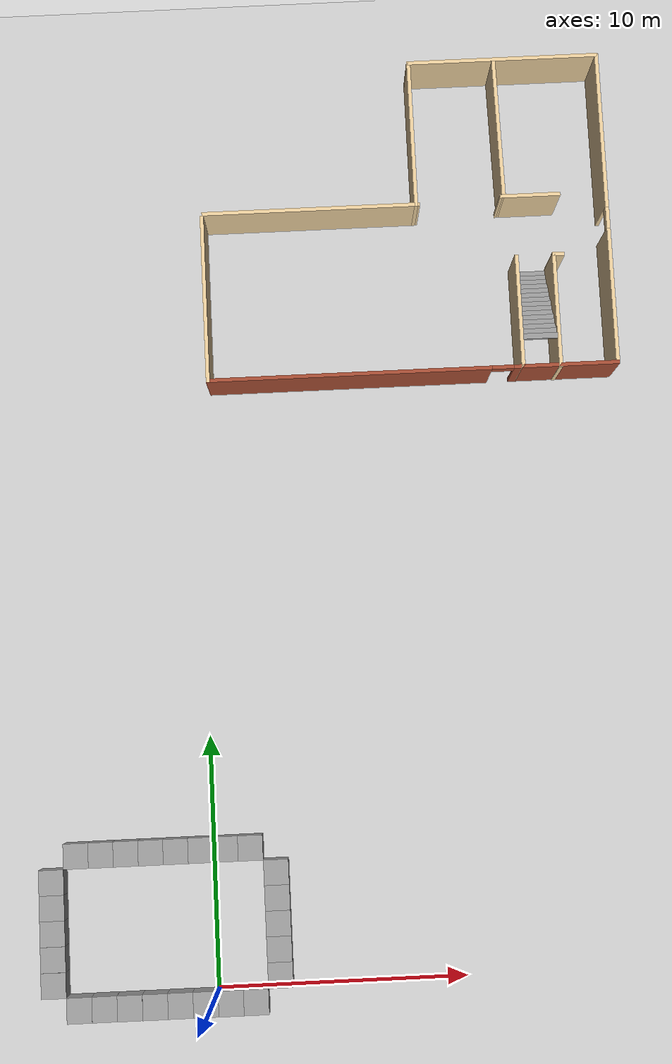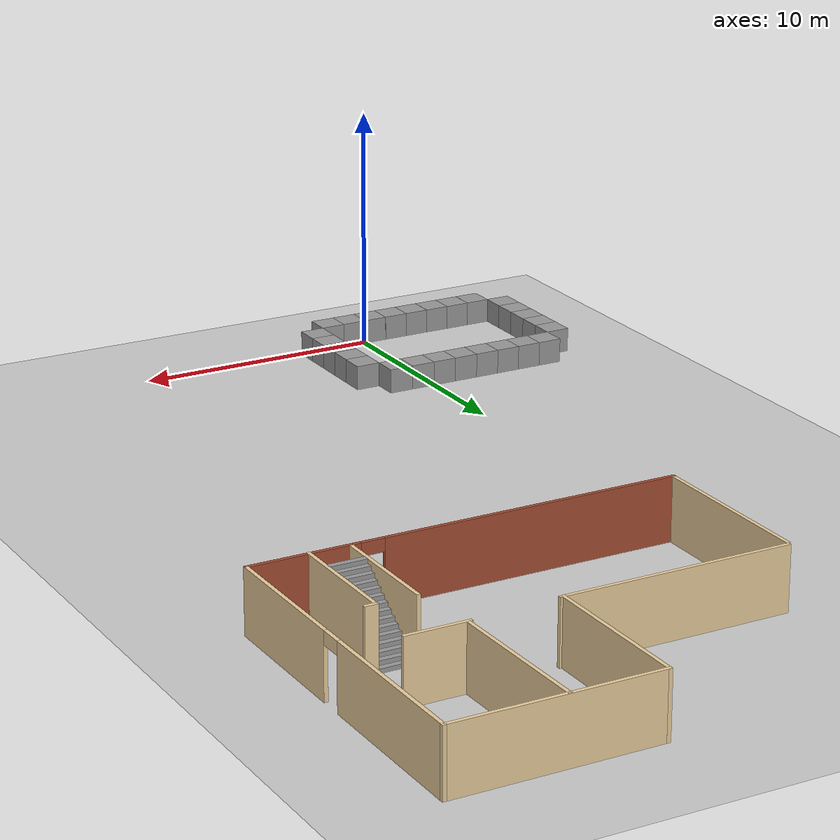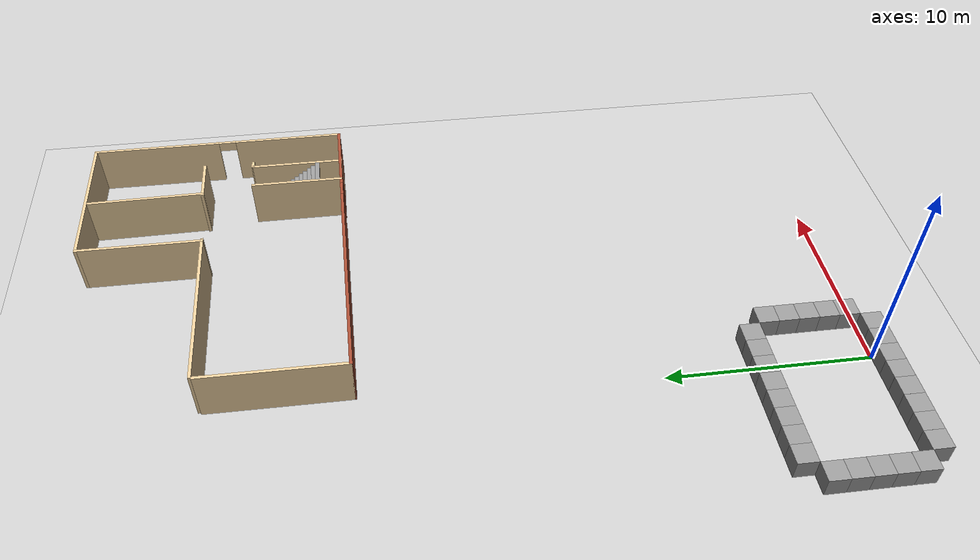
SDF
<sdf version="1.6">
 <world name="default">
  <light name="sun" type="directional">
   <pose>0 0 10 0 -0 0</pose>
   <diffuse>0.8 0.8 0.8 1</diffuse>
   <specular>0.2 0.2 0.2 1</specular>
   <attenuation>
    <range>1000</range>
    <constant>0.9</constant>
    <linear>0.01</linear>
    <quadratic>0.001</quadratic>
   </attenuation>
   <direction>-0.5 0.1 -0.9</direction>
  </light>
  <model name="ground_plane">
   <static>1</static>
   <link name="link">
    <collision name="collision">
     <geometry><plane><normal>0 0 1</normal><size>100 100</size></plane></geometry>
     <surface>
      <contact><collide_bitmask>65535</collide_bitmask></contact>
      <friction><ode><mu>100</mu><mu2>50</mu2></ode></friction>
     </surface>
    </collision>
    <visual name="visual">
     <cast_shadows>0</cast_shadows>
     <geometry><plane><normal>0 0 1</normal><size>100 100</size></plane></geometry>
     <material>
      <script><uri>file://media/materials/scripts/gazebo.material</uri><name>Gazebo/Grey</name></script>
     </material>
    </visual>
   </link>
  </model>
  <gravity>0 0 -9.8</gravity>
  <magnetic_field>6e-06 2.3e-05 -4.2e-05</magnetic_field>
  <atmosphere type="adiabatic"/>
  <physics name="default_physics" default="0" type="ode">
   <max_step_size>0.001</max_step_size>
   <real_time_factor>1</real_time_factor>
   <real_time_update_rate>1000</real_time_update_rate>
  </physics>
  <scene><ambient>0.4 0.4 0.4 1</ambient><background>0.7 0.7 0.7 1</background><shadows>1</shadows></scene>
  <spherical_coordinates>
   <surface_model>EARTH_WGS84</surface_model>
   <latitude_deg>0</latitude_deg>
   <longitude_deg>0</longitude_deg>
   <elevation>0</elevation>
   <heading_deg>0</heading_deg>
  </spherical_coordinates>
  <model name="lounge">
   <pose>8.96929 30.8479 0 0 -0 0</pose>
   <link name="Stairs_0">
    <visual name="Stairs_0_Visual_0">
     <pose>5.26794 -2.03684 0.083333 0 -0 0</pose>
     <geometry><box><size>1.41269 0.233333 0.166667</size></box></geometry>
     <material>
      <script><uri>file://media/materials/scripts/gazebo.material</uri><name>Gazebo/Grey</name></script>
      <ambient>1 1 1 1</ambient>
     </material>
     <meta><layer>0</layer></meta>
    </visual>
    <collision name="Stairs_0_Collision_0">
     <geometry><box><size>1.41269 0.233333 0.166667</size></box></geometry>
     <pose>5.26794 -2.03684 0.083333 0 -0 0</pose>
    </collision>
    <visual name="Stairs_0_Visual_1">
     <pose>5.26794 -2.27017 0.25 0 -0 0</pose>
     <geometry><box><size>1.41269 0.233333 0.166667</size></box></geometry>
     <material>
      <script><uri>file://media/materials/scripts/gazebo.material</uri><name>Gazebo/Grey</name></script>
      <ambient>1 1 1 1</ambient>
     </material>
     <meta><layer>0</layer></meta>
    </visual>
    <collision name="Stairs_0_Collision_1">
     <geometry><box><size>1.41269 0.233333 0.166667</size></box></geometry>
     <pose>5.26794 -2.27017 0.25 0 -0 0</pose>
    </collision>
    <visual name="Stairs_0_Visual_2">
     <pose>5.26794 -2.50351 0.416667 0 -0 0</pose>
     <geometry><box><size>1.41269 0.233333 0.166667</size></box></geometry>
     <material>
      <script><uri>file://media/materials/scripts/gazebo.material</uri><name>Gazebo/Grey</name></script>
      <ambient>1 1 1 1</ambient>
     </material>
     <meta><layer>0</layer></meta>
    </visual>
    <collision name="Stairs_0_Collision_2">
     <geometry><box><size>1.41269 0.233333 0.166667</size></box></geometry>
     <pose>5.26794 -2.50351 0.416667 0 -0 0</pose>
    </collision>
    <visual name="Stairs_0_Visual_3">
     <pose>5.26794 -2.73684 0.583333 0 -0 0</pose>
     <geometry><box><size>1.41269 0.233333 0.166667</size></box></geometry>
     <material>
      <script><uri>file://media/materials/scripts/gazebo.material</uri><name>Gazebo/Grey</name></script>
      <ambient>1 1 1 1</ambient>
     </material>
     <meta><layer>0</layer></meta>
    </visual>
    <collision name="Stairs_0_Collision_3">
     <geometry><box><size>1.41269 0.233333 0.166667</size></box></geometry>
     <pose>5.26794 -2.73684 0.583333 0 -0 0</pose>
    </collision>
    <visual name="Stairs_0_Visual_4">
     <pose>5.26794 -2.97017 0.75 0 -0 0</pose>
     <geometry><box><size>1.41269 0.233333 0.166667</size></box></geometry>
     <material>
      <script><uri>file://media/materials/scripts/gazebo.material</uri><name>Gazebo/Grey</name></script>
      <ambient>1 1 1 1</ambient>
     </material>
     <meta><layer>0</layer></meta>
    </visual>
    <collision name="Stairs_0_Collision_4">
     <geometry><box><size>1.41269 0.233333 0.166667</size></box></geometry>
     <pose>5.26794 -2.97017 0.75 0 -0 0</pose>
    </collision>
    <visual name="Stairs_0_Visual_5">
     <pose>5.26794 -3.2035 0.916667 0 -0 0</pose>
     <geometry><box><size>1.41269 0.233333 0.166667</size></box></geometry>
     <material>
      <script><uri>file://media/materials/scripts/gazebo.material</uri><name>Gazebo/Grey</name></script>
      <ambient>1 1 1 1</ambient>
     </material>
     <meta><layer>0</layer></meta>
    </visual>
    <collision name="Stairs_0_Collision_5">
     <geometry><box><size>1.41269 0.233333 0.166667</size></box></geometry>
     <pose>5.26794 -3.2035 0.916667 0 -0 0</pose>
    </collision>
    <visual name="Stairs_0_Visual_6">
     <pose>5.26794 -3.43684 1.08333 0 -0 0</pose>
     <geometry><box><size>1.41269 0.233333 0.166667</size></box></geometry>
     <material>
      <script><uri>file://media/materials/scripts/gazebo.material</uri><name>Gazebo/Grey</name></script>
      <ambient>1 1 1 1</ambient>
     </material>
     <meta><layer>0</layer></meta>
    </visual>
    <collision name="Stairs_0_Collision_6">
     <geometry><box><size>1.41269 0.233333 0.166667</size></box></geometry>
     <pose>5.26794 -3.43684 1.08333 0 -0 0</pose>
    </collision>
    <visual name="Stairs_0_Visual_7">
     <pose>5.26794 -3.67017 1.25 0 -0 0</pose>
     <geometry><box><size>1.41269 0.233333 0.166667</size></box></geometry>
     <material>
      <script><uri>file://media/materials/scripts/gazebo.material</uri><name>Gazebo/Grey</name></script>
      <ambient>1 1 1 1</ambient>
     </material>
     <meta><layer>0</layer></meta>
    </visual>
    <collision name="Stairs_0_Collision_7">
     <geometry><box><size>1.41269 0.233333 0.166667</size></box></geometry>
     <pose>5.26794 -3.67017 1.25 0 -0 0</pose>
    </collision>
    <visual name="Stairs_0_Visual_8">
     <pose>5.26794 -3.90351 1.41667 0 -0 0</pose>
     <geometry><box><size>1.41269 0.233333 0.166667</size></box></geometry>
     <material>
      <script><uri>file://media/materials/scripts/gazebo.material</uri><name>Gazebo/Grey</name></script>
      <ambient>1 1 1 1</ambient>
     </material>
     <meta><layer>0</layer></meta>
    </visual>
    <collision name="Stairs_0_Collision_8">
     <geometry><box><size>1.41269 0.233333 0.166667</size></box></geometry>
     <pose>5.26794 -3.90351 1.41667 0 -0 0</pose>
    </collision>
    <visual name="Stairs_0_Visual_9">
     <pose>5.26794 -4.13684 1.58333 0 -0 0</pose>
     <geometry><box><size>1.41269 0.233333 0.166667</size></box></geometry>
     <material>
      <script><uri>file://media/materials/scripts/gazebo.material</uri><name>Gazebo/Grey</name></script>
      <ambient>1 1 1 1</ambient>
     </material>
     <meta><layer>0</layer></meta>
    </visual>
    <collision name="Stairs_0_Collision_9">
     <geometry><box><size>1.41269 0.233333 0.166667</size></box></geometry>
     <pose>5.26794 -4.13684 1.58333 0 -0 0</pose>
    </collision>
    <visual name="Stairs_0_Visual_10">
     <pose>5.26794 -4.37017 1.75 0 -0 0</pose>
     <geometry><box><size>1.41269 0.233333 0.166667</size></box></geometry>
     <material>
      <script><uri>file://media/materials/scripts/gazebo.material</uri><name>Gazebo/Grey</name></script>
      <ambient>1 1 1 1</ambient>
     </material>
     <meta><layer>0</layer></meta>
    </visual>
    <collision name="Stairs_0_Collision_10">
     <geometry><box><size>1.41269 0.233333 0.166667</size></box></geometry>
     <pose>5.26794 -4.37017 1.75 0 -0 0</pose>
    </collision>
    <visual name="Stairs_0_Visual_11">
     <pose>5.26794 -4.60351 1.91667 0 -0 0</pose>
     <geometry><box><size>1.41269 0.233333 0.166667</size></box></geometry>
     <material>
      <script><uri>file://media/materials/scripts/gazebo.material</uri><name>Gazebo/Grey</name></script>
      <ambient>1 1 1 1</ambient>
     </material>
     <meta><layer>0</layer></meta>
    </visual>
    <collision name="Stairs_0_Collision_11">
     <geometry><box><size>1.41269 0.233333 0.166667</size></box></geometry>
     <pose>5.26794 -4.60351 1.91667 0 -0 0</pose>
    </collision>
    <visual name="Stairs_0_Visual_12">
     <pose>5.26794 -4.83684 2.08333 0 -0 0</pose>
     <geometry><box><size>1.41269 0.233333 0.166667</size></box></geometry>
     <material>
      <script><uri>file://media/materials/scripts/gazebo.material</uri><name>Gazebo/Grey</name></script>
      <ambient>1 1 1 1</ambient>
     </material>
     <meta><layer>0</layer></meta>
    </visual>
    <collision name="Stairs_0_Collision_12">
     <geometry><box><size>1.41269 0.233333 0.166667</size></box></geometry>
     <pose>5.26794 -4.83684 2.08333 0 -0 0</pose>
    </collision>
    <visual name="Stairs_0_Visual_13">
     <pose>5.26794 -5.07017 2.25 0 -0 0</pose>
     <geometry><box><size>1.41269 0.233333 0.166667</size></box></geometry>
     <material>
      <script><uri>file://media/materials/scripts/gazebo.material</uri><name>Gazebo/Grey</name></script>
      <ambient>1 1 1 1</ambient>
     </material>
     <meta><layer>0</layer></meta>
    </visual>
    <collision name="Stairs_0_Collision_13">
     <geometry><box><size>1.41269 0.233333 0.166667</size></box></geometry>
     <pose>5.26794 -5.07017 2.25 0 -0 0</pose>
    </collision>
    <visual name="Stairs_0_Visual_14">
     <pose>5.26794 -5.30351 2.41667 0 -0 0</pose>
     <geometry><box><size>1.41269 0.233333 0.166667</size></box></geometry>
     <material>
      <script><uri>file://media/materials/scripts/gazebo.material</uri><name>Gazebo/Grey</name></script>
      <ambient>1 1 1 1</ambient>
     </material>
     <meta><layer>0</layer></meta>
    </visual>
    <collision name="Stairs_0_Collision_14">
     <geometry><box><size>1.41269 0.233333 0.166667</size></box></geometry>
     <pose>5.26794 -5.30351 2.41667 0 -0 0</pose>
    </collision>
   </link>
   <link name="Wall_25">
    <collision name="Wall_25_Collision">
     <geometry><box><size>7 0.15 2.5</size></box></geometry>
     <pose>0 0 1.25 0 -0 0</pose>
    </collision>
    <visual name="Wall_25_Visual">
     <pose>0 0 1.25 0 -0 0</pose>
     <geometry><box><size>7 0.15 2.5</size></box></geometry>
     <material>
      <script><uri>file://media/materials/scripts/gazebo.material</uri><name>Gazebo/Grey</name></script>
      <ambient>0.921569 0.807843 0.615686 1</ambient>
     </material>
     <meta><layer>0</layer></meta>
    </visual>
    <pose>-8.35 -3.11051 0 0 0 -1.5708</pose>
   </link>
   <link name="Wall_27">
    <pose>-1.925 -6.53552 0 0 -0 0</pose>
    <visual name="Wall_27_Visual_0">
     <pose>-0.677313 0 1.25 0 -0 0</pose>
     <geometry><box><size>11.6454 0.15 2.5</size></box></geometry>
     <material>
      <script><uri>file://media/materials/scripts/gazebo.material</uri><name>Gazebo/Bricks</name></script>
      <ambient>1 1 1 1</ambient>
     </material>
     <meta><layer>0</layer></meta>
    </visual>
    <collision name="Wall_27_Collision_0">
     <geometry><box><size>11.6454 0.15 2.5</size></box></geometry>
     <pose>-0.677313 0 1.25 0 -0 0</pose>
    </collision>
    <visual name="Wall_27_Visual_1">
     <pose>6.27269 0 1.25 0 -0 0</pose>
     <geometry><box><size>0.454627 0.15 2.5</size></box></geometry>
     <material>
      <script><uri>file://media/materials/scripts/gazebo.material</uri><name>Gazebo/Bricks</name></script>
      <ambient>1 1 1 1</ambient>
     </material>
     <meta><layer>0</layer></meta>
    </visual>
    <collision name="Wall_27_Collision_1">
     <geometry><box><size>0.454627 0.15 2.5</size></box></geometry>
     <pose>6.27269 0 1.25 0 -0 0</pose>
    </collision>
    <visual name="Wall_27_Visual_2">
     <pose>5.59537 0 2.25 0 -0 0</pose>
     <geometry><box><size>0.9 0.15 0.5</size></box></geometry>
     <material>
      <script><uri>file://media/materials/scripts/gazebo.material</uri><name>Gazebo/Bricks</name></script>
      <ambient>1 1 1 1</ambient>
     </material>
     <meta><layer>0</layer></meta>
    </visual>
    <collision name="Wall_27_Collision_2">
     <geometry><box><size>0.9 0.15 0.5</size></box></geometry>
     <pose>5.59537 0 2.25 0 -0 0</pose>
    </collision>
   </link>
   <link name="Wall_28">
    <collision name="Wall_28_Collision">
     <geometry><box><size>4.75 0.15 2.5</size></box></geometry>
     <pose>0 0 1.25 0 -0 0</pose>
    </collision>
    <visual name="Wall_28_Visual">
     <pose>0 0 1.25 0 -0 0</pose>
     <geometry><box><size>4.75 0.15 2.5</size></box></geometry>
     <material>
      <script><uri>file://media/materials/scripts/gazebo.material</uri><name>Gazebo/Grey</name></script>
      <ambient>0.921569 0.807843 0.615686 1</ambient>
     </material>
     <meta><layer>0</layer></meta>
    </visual>
    <pose>4.5 -4.23552 0 0 -0 1.5708</pose>
   </link>
   <link name="Wall_30">
    <collision name="Wall_30_Collision">
     <geometry><box><size>4 0.15 2.5</size></box></geometry>
     <pose>0 0 1.25 0 -0 0</pose>
    </collision>
    <visual name="Wall_30_Visual">
     <pose>0 0 1.25 0 -0 0</pose>
     <geometry><box><size>4 0.15 2.5</size></box></geometry>
     <material>
      <script><uri>file://media/materials/scripts/gazebo.material</uri><name>Gazebo/Bricks</name></script>
      <ambient>1 1 1 1</ambient>
     </material>
     <meta><layer>0</layer></meta>
    </visual>
    <pose>6.425 -6.53552 0 0 -0 0</pose>
   </link>
   <link name="Wall_31">
    <pose>8.35 0.014485 0 0 -0 1.5708</pose>
    <visual name="Wall_31_Visual_0">
     <pose>-3.77058 0 1.25 0 -0 0</pose>
     <geometry><box><size>5.70883 0.15 2.5</size></box></geometry>
     <material>
      <script><uri>file://media/materials/scripts/gazebo.material</uri><name>Gazebo/Grey</name></script>
      <ambient>0.921569 0.807843 0.615686 1</ambient>
     </material>
     <meta><layer>0</layer></meta>
    </visual>
    <collision name="Wall_31_Collision_0">
     <geometry><box><size>5.70883 0.15 2.5</size></box></geometry>
     <pose>-3.77058 0 1.25 0 -0 0</pose>
    </collision>
    <visual name="Wall_31_Visual_1">
     <pose>3.30442 0 1.25 0 -0 0</pose>
     <geometry><box><size>6.64117 0.15 2.5</size></box></geometry>
     <material>
      <script><uri>file://media/materials/scripts/gazebo.material</uri><name>Gazebo/Grey</name></script>
      <ambient>0.921569 0.807843 0.615686 1</ambient>
     </material>
     <meta><layer>0</layer></meta>
    </visual>
    <collision name="Wall_31_Collision_1">
     <geometry><box><size>6.64117 0.15 2.5</size></box></geometry>
     <pose>3.30442 0 1.25 0 -0 0</pose>
    </collision>
    <visual name="Wall_31_Visual_2">
     <pose>-0.466169 0 2.25 0 -0 0</pose>
     <geometry><box><size>0.9 0.15 0.5</size></box></geometry>
     <material>
      <script><uri>file://media/materials/scripts/gazebo.material</uri><name>Gazebo/Grey</name></script>
      <ambient>0.921569 0.807843 0.615686 1</ambient>
     </material>
     <meta><layer>0</layer></meta>
    </visual>
    <collision name="Wall_31_Collision_2">
     <geometry><box><size>0.9 0.15 0.5</size></box></geometry>
     <pose>-0.466169 0 2.25 0 -0 0</pose>
    </collision>
   </link>
   <link name="Wall_32">
    <collision name="Wall_32_Collision">
     <geometry><box><size>8 0.15 2.5</size></box></geometry>
     <pose>0 0 1.25 0 -0 0</pose>
    </collision>
    <visual name="Wall_32_Visual">
     <pose>0 0 1.25 0 -0 0</pose>
     <geometry><box><size>8 0.15 2.5</size></box></geometry>
     <material>
      <script><uri>file://media/materials/scripts/gazebo.material</uri><name>Gazebo/Grey</name></script>
      <ambient>0.921569 0.807843 0.615686 1</ambient>
     </material>
     <meta><layer>0</layer></meta>
    </visual>
    <pose>4.425 6.56449 0 0 -0 3.14159</pose>
   </link>
   <link name="Wall_33">
    <collision name="Wall_33_Collision">
     <geometry><box><size>6.25052 0.15 2.5</size></box></geometry>
     <pose>0 0 1.25 0 -0 0</pose>
    </collision>
    <visual name="Wall_33_Visual">
     <pose>0 0 1.25 0 -0 0</pose>
     <geometry><box><size>6.25052 0.15 2.5</size></box></geometry>
     <material>
      <script><uri>file://media/materials/scripts/gazebo.material</uri><name>Gazebo/Grey</name></script>
      <ambient>0.921569 0.807843 0.615686 1</ambient>
     </material>
     <meta><layer>0</layer></meta>
    </visual>
    <pose>0.5 3.51449 0 0 0 -1.5708</pose>
   </link>
   <link name="Wall_34">
    <collision name="Wall_34_Collision">
     <geometry><box><size>9 0.15 2.5</size></box></geometry>
     <pose>0 0 1.25 0 -0 0</pose>
    </collision>
    <visual name="Wall_34_Visual">
     <pose>0 0 1.25 0 -0 0</pose>
     <geometry><box><size>9 0.15 2.5</size></box></geometry>
     <material>
      <script><uri>file://media/materials/scripts/gazebo.material</uri><name>Gazebo/Grey</name></script>
      <ambient>0.921569 0.807843 0.615686 1</ambient>
     </material>
     <meta><layer>0</layer></meta>
    </visual>
    <pose>-3.845 0.464485 0 0 -0 3.14159</pose>
   </link>
   <link name="Wall_36">
    <collision name="Wall_36_Collision">
     <geometry><box><size>6.02472 0.15 2.5</size></box></geometry>
     <pose>0 0 1.25 0 -0 0</pose>
    </collision>
    <visual name="Wall_36_Visual">
     <pose>0 0 1.25 0 -0 0</pose>
     <geometry><box><size>6.02472 0.15 2.5</size></box></geometry>
     <material>
      <script><uri>file://media/materials/scripts/gazebo.material</uri><name>Gazebo/Grey</name></script>
      <ambient>0.921569 0.807843 0.615686 1</ambient>
     </material>
     <meta><layer>0</layer></meta>
    </visual>
    <pose>4.08753 3.58036 0 0 0 -1.55513</pose>
   </link>
   <link name="Wall_37">
    <collision name="Wall_37_Collision">
     <geometry><box><size>2.5 0.15 2.5</size></box></geometry>
     <pose>0 0 1.25 0 -0 0</pose>
    </collision>
    <visual name="Wall_37_Visual">
     <pose>0 0 1.25 0 -0 0</pose>
     <geometry><box><size>2.5 0.15 2.5</size></box></geometry>
     <material>
      <script><uri>file://media/materials/scripts/gazebo.material</uri><name>Gazebo/Grey</name></script>
      <ambient>0.921569 0.807843 0.615686 1</ambient>
     </material>
     <meta><layer>0</layer></meta>
    </visual>
    <pose>5.21653 0.643356 0 0 -0 0</pose>
   </link>
   <link name="Wall_39">
    <collision name="Wall_39_Collision">
     <geometry><box><size>4.75 0.15 2.5</size></box></geometry>
     <pose>0 0 1.25 0 -0 0</pose>
    </collision>
    <visual name="Wall_39_Visual">
     <pose>0 0 1.25 0 -0 0</pose>
     <geometry><box><size>4.75 0.15 2.5</size></box></geometry>
     <material>
      <script><uri>file://media/materials/scripts/gazebo.material</uri><name>Gazebo/Grey</name></script>
      <ambient>0.921569 0.807843 0.615686 1</ambient>
     </material>
     <meta><layer>0</layer></meta>
    </visual>
    <pose>6.03095 -4.26475 0 0 0 -1.5708</pose>
   </link>
   <link name="Wall_41">
    <collision name="Wall_41_Collision">
     <geometry><box><size>0.5 0.15 2.5</size></box></geometry>
     <pose>0 0 1.25 0 -0 0</pose>
    </collision>
    <visual name="Wall_41_Visual">
     <pose>0 0 1.25 0 -0 0</pose>
     <geometry><box><size>0.5 0.15 2.5</size></box></geometry>
     <material>
      <script><uri>file://media/materials/scripts/gazebo.material</uri><name>Gazebo/Grey</name></script>
      <ambient>0.921569 0.807843 0.615686 1</ambient>
     </material>
     <meta><layer>0</layer></meta>
    </visual>
    <pose>6.21776 -1.90848 0 0 -0 0</pose>
   </link>
   <static>1</static>
  </model>
  <audio><device>default</device></audio>
  <model name="unit_box_4">
   <pose>-5.49998 5.50013 0.5 0 0 -8e-06</pose>
   <link name="link">
    <inertial>
     <mass>1</mass>
     <inertia>
      <ixx>0.166667</ixx>
      <ixy>0</ixy>
      <ixz>0</ixz>
      <iyy>0.166667</iyy>
      <iyz>0</iyz>
      <izz>0.166667</izz>
     </inertia>
    </inertial>
    <collision name="collision"><geometry><box><size>1 1 1</size></box></geometry></collision>
    <visual name="visual">
     <geometry><box><size>1 1 1</size></box></geometry>
     <material>
      <script><name>Gazebo/Grey</name><uri>file://media/materials/scripts/gazebo.material</uri></script>
     </material>
    </visual>
   </link>
  </model>
  <model name="unit_box_5">
   <pose>-4.49998 5.5001 0.5 0 -0 -8e-06</pose>
   <link name="link">
    <inertial>
     <mass>1</mass>
     <inertia>
      <ixx>0.166667</ixx>
      <ixy>0</ixy>
      <ixz>0</ixz>
      <iyy>0.166667</iyy>
      <iyz>0</iyz>
      <izz>0.166667</izz>
     </inertia>
    </inertial>
    <collision name="collision"><geometry><box><size>1 1 1</size></box></geometry></collision>
    <visual name="visual">
     <geometry><box><size>1 1 1</size></box></geometry>
     <material>
      <script><name>Gazebo/Grey</name><uri>file://media/materials/scripts/gazebo.material</uri></script>
     </material>
    </visual>
   </link>
  </model>
  <model name="unit_box_6">
   <pose>-3.49998 5.50005 0.5 0 0 -9e-06</pose>
   <link name="link">
    <inertial>
     <mass>1</mass>
     <inertia>
      <ixx>0.166667</ixx>
      <ixy>0</ixy>
      <ixz>0</ixz>
      <iyy>0.166667</iyy>
      <iyz>0</iyz>
      <izz>0.166667</izz>
     </inertia>
    </inertial>
    <collision name="collision"><geometry><box><size>1 1 1</size></box></geometry></collision>
    <visual name="visual">
     <geometry><box><size>1 1 1</size></box></geometry>
     <material>
      <script><name>Gazebo/Grey</name><uri>file://media/materials/scripts/gazebo.material</uri></script>
     </material>
    </visual>
   </link>
  </model>
  <model name="unit_box_7">
   <pose>-2.49997 5.50003 0.5 0 0 -1.1e-05</pose>
   <link name="link">
    <inertial>
     <mass>1</mass>
     <inertia>
      <ixx>0.166667</ixx>
      <ixy>0</ixy>
      <ixz>0</ixz>
      <iyy>0.166667</iyy>
      <iyz>0</iyz>
      <izz>0.166667</izz>
     </inertia>
    </inertial>
    <collision name="collision"><geometry><box><size>1 1 1</size></box></geometry></collision>
    <visual name="visual">
     <geometry><box><size>1 1 1</size></box></geometry>
     <material>
      <script><name>Gazebo/Grey</name><uri>file://media/materials/scripts/gazebo.material</uri></script>
     </material>
    </visual>
   </link>
  </model>
  <model name="unit_box_8">
   <pose>-1.49995 5.50005 0.499995 0 1e-05 1e-05</pose>
   <link name="link">
    <inertial>
     <mass>1</mass>
     <inertia>
      <ixx>0.166667</ixx>
      <ixy>0</ixy>
      <ixz>0</ixz>
      <iyy>0.166667</iyy>
      <iyz>0</iyz>
      <izz>0.166667</izz>
     </inertia>
    </inertial>
    <collision name="collision"><geometry><box><size>1 1 1</size></box></geometry></collision>
    <visual name="visual">
     <geometry><box><size>1 1 1</size></box></geometry>
     <material>
      <script><name>Gazebo/Grey</name><uri>file://media/materials/scripts/gazebo.material</uri></script>
     </material>
    </visual>
   </link>
  </model>
  <model name="unit_box_9">
   <pose>-0.499954 5.50002 0.499995 0 -9e-06 7e-06</pose>
   <link name="link">
    <inertial>
     <mass>1</mass>
     <inertia>
      <ixx>0.166667</ixx>
      <ixy>0</ixy>
      <ixz>0</ixz>
      <iyy>0.166667</iyy>
      <iyz>0</iyz>
      <izz>0.166667</izz>
     </inertia>
    </inertial>
    <collision name="collision"><geometry><box><size>1 1 1</size></box></geometry></collision>
    <visual name="visual">
     <geometry><box><size>1 1 1</size></box></geometry>
     <material>
      <script><name>Gazebo/Grey</name><uri>file://media/materials/scripts/gazebo.material</uri></script>
     </material>
    </visual>
   </link>
  </model>
  <model name="unit_box_10">
   <pose>0.500056 5.5 0.499995 0 9e-06 7e-06</pose>
   <link name="link">
    <inertial>
     <mass>1</mass>
     <inertia>
      <ixx>0.166667</ixx>
      <ixy>0</ixy>
      <ixz>0</ixz>
      <iyy>0.166667</iyy>
      <iyz>0</iyz>
      <izz>0.166667</izz>
     </inertia>
    </inertial>
    <collision name="collision"><geometry><box><size>1 1 1</size></box></geometry></collision>
    <visual name="visual">
     <geometry><box><size>1 1 1</size></box></geometry>
     <material>
      <script><name>Gazebo/Grey</name><uri>file://media/materials/scripts/gazebo.material</uri></script>
     </material>
    </visual>
   </link>
  </model>
  <model name="unit_box_11">
   <pose>1.50006 5.50001 0.499995 0 1e-05 8e-06</pose>
   <link name="link">
    <inertial>
     <mass>1</mass>
     <inertia>
      <ixx>0.166667</ixx>
      <ixy>0</ixy>
      <ixz>0</ixz>
      <iyy>0.166667</iyy>
      <iyz>0</iyz>
      <izz>0.166667</izz>
     </inertia>
    </inertial>
    <collision name="collision"><geometry><box><size>1 1 1</size></box></geometry></collision>
    <visual name="visual">
     <geometry><box><size>1 1 1</size></box></geometry>
     <material>
      <script><name>Gazebo/Grey</name><uri>file://media/materials/scripts/gazebo.material</uri></script>
     </material>
    </visual>
   </link>
  </model>
  <model name="unit_box_12">
   <pose>2.50001 4.5 0.499995 0 -1e-05 -2e-06</pose>
   <link name="link">
    <inertial>
     <mass>1</mass>
     <inertia>
      <ixx>0.166667</ixx>
      <ixy>0</ixy>
      <ixz>0</ixz>
      <iyy>0.166667</iyy>
      <iyz>0</iyz>
      <izz>0.166667</izz>
     </inertia>
    </inertial>
    <collision name="collision"><geometry><box><size>1 1 1</size></box></geometry></collision>
    <visual name="visual">
     <geometry><box><size>1 1 1</size></box></geometry>
     <material>
      <script><name>Gazebo/Grey</name><uri>file://media/materials/scripts/gazebo.material</uri></script>
     </material>
    </visual>
   </link>
  </model>
  <model name="unit_box_13">
   <pose>2.50001 3.5 0.5 0 -0 2e-06</pose>
   <link name="link">
    <inertial>
     <mass>1</mass>
     <inertia>
      <ixx>0.166667</ixx>
      <ixy>0</ixy>
      <ixz>0</ixz>
      <iyy>0.166667</iyy>
      <iyz>0</iyz>
      <izz>0.166667</izz>
     </inertia>
    </inertial>
    <collision name="collision"><geometry><box><size>1 1 1</size></box></geometry></collision>
    <visual name="visual">
     <geometry><box><size>1 1 1</size></box></geometry>
     <material>
      <script><name>Gazebo/Grey</name><uri>file://media/materials/scripts/gazebo.material</uri></script>
     </material>
    </visual>
   </link>
  </model>
  <model name="unit_box_14">
   <pose>2.50002 2.49999 0.5 0 -0 0</pose>
   <link name="link">
    <inertial>
     <mass>1</mass>
     <inertia>
      <ixx>0.166667</ixx>
      <ixy>0</ixy>
      <ixz>0</ixz>
      <iyy>0.166667</iyy>
      <iyz>0</iyz>
      <izz>0.166667</izz>
     </inertia>
    </inertial>
    <collision name="collision"><geometry><box><size>1 1 1</size></box></geometry></collision>
    <visual name="visual">
     <geometry><box><size>1 1 1</size></box></geometry>
     <material>
      <script><name>Gazebo/Grey</name><uri>file://media/materials/scripts/gazebo.material</uri></script>
     </material>
    </visual>
   </link>
  </model>
  <model name="unit_box_15">
   <pose>2.50001 1.49998 0.5 0 -0 3e-06</pose>
   <link name="link">
    <inertial>
     <mass>1</mass>
     <inertia>
      <ixx>0.166667</ixx>
      <ixy>0</ixy>
      <ixz>0</ixz>
      <iyy>0.166667</iyy>
      <iyz>0</iyz>
      <izz>0.166667</izz>
     </inertia>
    </inertial>
    <collision name="collision"><geometry><box><size>1 1 1</size></box></geometry></collision>
    <visual name="visual">
     <geometry><box><size>1 1 1</size></box></geometry>
     <material>
      <script><name>Gazebo/Grey</name><uri>file://media/materials/scripts/gazebo.material</uri></script>
     </material>
    </visual>
   </link>
  </model>
  <model name="unit_box_16">
   <pose>2.5 0.499958 0.5 0 -0 4e-06</pose>
   <link name="link">
    <inertial>
     <mass>1</mass>
     <inertia>
      <ixx>0.166667</ixx>
      <ixy>0</ixy>
      <ixz>0</ixz>
      <iyy>0.166667</iyy>
      <iyz>0</iyz>
      <izz>0.166667</izz>
     </inertia>
    </inertial>
    <collision name="collision"><geometry><box><size>1 1 1</size></box></geometry></collision>
    <visual name="visual">
     <geometry><box><size>1 1 1</size></box></geometry>
     <material>
      <script><name>Gazebo/Grey</name><uri>file://media/materials/scripts/gazebo.material</uri></script>
     </material>
    </visual>
   </link>
  </model>
  <model name="unit_box_17">
   <pose>-5.50306 -0.49583 0.5 0 -0 0.001844</pose>
   <link name="link">
    <inertial>
     <mass>1</mass>
     <inertia>
      <ixx>0.166667</ixx>
      <ixy>0</ixy>
      <ixz>0</ixz>
      <iyy>0.166667</iyy>
      <iyz>0</iyz>
      <izz>0.166667</izz>
     </inertia>
    </inertial>
    <collision name="collision"><geometry><box><size>1 1 1</size></box></geometry></collision>
    <visual name="visual">
     <geometry><box><size>1 1 1</size></box></geometry>
     <material>
      <script><name>Gazebo/Grey</name><uri>file://media/materials/scripts/gazebo.material</uri></script>
     </material>
    </visual>
   </link>
  </model>
  <model name="unit_box_19">
   <pose>-3.50235 -0.496942 0.5 0 -0 0.002569</pose>
   <link name="link">
    <inertial>
     <mass>1</mass>
     <inertia>
      <ixx>0.166667</ixx>
      <ixy>0</ixy>
      <ixz>0</ixz>
      <iyy>0.166667</iyy>
      <iyz>0</iyz>
      <izz>0.166667</izz>
     </inertia>
    </inertial>
    <collision name="collision"><geometry><box><size>1 1 1</size></box></geometry></collision>
    <visual name="visual">
     <geometry><box><size>1 1 1</size></box></geometry>
     <material>
      <script><name>Gazebo/Grey</name><uri>file://media/materials/scripts/gazebo.material</uri></script>
     </material>
    </visual>
   </link>
  </model>
  <model name="unit_box_21">
   <pose>-1.50053 -0.497471 0.5 0 0 -0.001041</pose>
   <link name="link">
    <inertial>
     <mass>1</mass>
     <inertia>
      <ixx>0.166667</ixx>
      <ixy>0</ixy>
      <ixz>0</ixz>
      <iyy>0.166667</iyy>
      <iyz>0</iyz>
      <izz>0.166667</izz>
     </inertia>
    </inertial>
    <collision name="collision"><geometry><box><size>1 1 1</size></box></geometry></collision>
    <visual name="visual">
     <geometry><box><size>1 1 1</size></box></geometry>
     <material>
      <script><name>Gazebo/Grey</name><uri>file://media/materials/scripts/gazebo.material</uri></script>
     </material>
    </visual>
   </link>
  </model>
  <model name="unit_box_22">
   <pose>-0.500016 -0.499999 0.5 0 0 -2.6e-05</pose>
   <link name="link">
    <inertial>
     <mass>1</mass>
     <inertia>
      <ixx>0.166667</ixx>
      <ixy>0</ixy>
      <ixz>0</ixz>
      <iyy>0.166667</iyy>
      <iyz>0</iyz>
      <izz>0.166667</izz>
     </inertia>
    </inertial>
    <collision name="collision"><geometry><box><size>1 1 1</size></box></geometry></collision>
    <visual name="visual">
     <geometry><box><size>1 1 1</size></box></geometry>
     <material>
      <script><name>Gazebo/Grey</name><uri>file://media/materials/scripts/gazebo.material</uri></script>
     </material>
    </visual>
   </link>
  </model>
  <model name="unit_box_23">
   <pose>0.500001 -0.499993 0.499995 -1e-05 -0 1e-06</pose>
   <link name="link">
    <inertial>
     <mass>1</mass>
     <inertia>
      <ixx>0.166667</ixx>
      <ixy>0</ixy>
      <ixz>0</ixz>
      <iyy>0.166667</iyy>
      <iyz>0</iyz>
      <izz>0.166667</izz>
     </inertia>
    </inertial>
    <collision name="collision"><geometry><box><size>1 1 1</size></box></geometry></collision>
    <visual name="visual">
     <geometry><box><size>1 1 1</size></box></geometry>
     <material>
      <script><name>Gazebo/Grey</name><uri>file://media/materials/scripts/gazebo.material</uri></script>
     </material>
    </visual>
   </link>
  </model>
  <model name="unit_box">
   <pose>-6.50014 2.50084 0.499995 -1e-05 0 -0.000184</pose>
   <link name="link">
    <inertial>
     <mass>1</mass>
     <inertia>
      <ixx>0.166667</ixx>
      <ixy>0</ixy>
      <ixz>0</ixz>
      <iyy>0.166667</iyy>
      <iyz>0</iyz>
      <izz>0.166667</izz>
     </inertia>
    </inertial>
    <collision name="collision"><geometry><box><size>1 1 1</size></box></geometry></collision>
    <visual name="visual">
     <geometry><box><size>1 1 1</size></box></geometry>
     <material>
      <script><name>Gazebo/Grey</name><uri>file://media/materials/scripts/gazebo.material</uri></script>
     </material>
    </visual>
   </link>
  </model>
  <model name="unit_box_0">
   <pose>-6.50009 4.50085 0.499995 -1e-05 -0 -0.000186</pose>
   <link name="link">
    <inertial>
     <mass>1</mass>
     <inertia>
      <ixx>0.166667</ixx>
      <ixy>0</ixy>
      <ixz>0</ixz>
      <iyy>0.166667</iyy>
      <iyz>0</iyz>
      <izz>0.166667</izz>
     </inertia>
    </inertial>
    <collision name="collision"><geometry><box><size>1 1 1</size></box></geometry></collision>
    <visual name="visual">
     <geometry><box><size>1 1 1</size></box></geometry>
     <material>
      <script><name>Gazebo/Grey</name><uri>file://media/materials/scripts/gazebo.material</uri></script>
     </material>
    </visual>
   </link>
  </model>
  <model name="unit_box_1">
   <pose>-6.50028 3.50084 0.5 -0 -0 -0.000184</pose>
   <link name="link">
    <inertial>
     <mass>1</mass>
     <inertia>
      <ixx>0.166667</ixx>
      <ixy>0</ixy>
      <ixz>0</ixz>
      <iyy>0.166667</iyy>
      <iyz>0</iyz>
      <izz>0.166667</izz>
     </inertia>
    </inertial>
    <collision name="collision"><geometry><box><size>1 1 1</size></box></geometry></collision>
    <visual name="visual">
     <geometry><box><size>1 1 1</size></box></geometry>
     <material>
      <script><name>Gazebo/Grey</name><uri>file://media/materials/scripts/gazebo.material</uri></script>
     </material>
    </visual>
   </link>
  </model>
  <model name="unit_box_2">
   <pose>-6.50052 1.50029 0.5 0 -0 -0.001228</pose>
   <link name="link">
    <inertial>
     <mass>1</mass>
     <inertia>
      <ixx>0.166667</ixx>
      <ixy>0</ixy>
      <ixz>0</ixz>
      <iyy>0.166667</iyy>
      <iyz>0</iyz>
      <izz>0.166667</izz>
     </inertia>
    </inertial>
    <collision name="collision"><geometry><box><size>1 1 1</size></box></geometry></collision>
    <visual name="visual">
     <geometry><box><size>1 1 1</size></box></geometry>
     <material>
      <script><name>Gazebo/Grey</name><uri>file://media/materials/scripts/gazebo.material</uri></script>
     </material>
    </visual>
   </link>
  </model>
  <model name="unit_box_3">
   <pose>-6.50065 0.497503 0.5 -0 -0 -0.006779</pose>
   <link name="link">
    <inertial>
     <mass>1</mass>
     <inertia>
      <ixx>0.166667</ixx>
      <ixy>0</ixy>
      <ixz>0</ixz>
      <iyy>0.166667</iyy>
      <iyz>0</iyz>
      <izz>0.166667</izz>
     </inertia>
    </inertial>
    <collision name="collision"><geometry><box><size>1 1 1</size></box></geometry></collision>
    <visual name="visual">
     <geometry><box><size>1 1 1</size></box></geometry>
     <material>
      <script><name>Gazebo/Grey</name><uri>file://media/materials/scripts/gazebo.material</uri></script>
     </material>
    </visual>
   </link>
  </model>
  <model name="unit_box_18">
   <pose>-4.50237 -0.494746 0.5 0 -0 0.002582</pose>
   <link name="link">
    <inertial>
     <mass>1</mass>
     <inertia>
      <ixx>0.166667</ixx>
      <ixy>0</ixy>
      <ixz>0</ixz>
      <iyy>0.166667</iyy>
      <iyz>0</iyz>
      <izz>0.166667</izz>
     </inertia>
    </inertial>
    <collision name="collision"><geometry><box><size>1 1 1</size></box></geometry></collision>
    <visual name="visual">
     <geometry><box><size>1 1 1</size></box></geometry>
     <material>
      <script><name>Gazebo/Grey</name><uri>file://media/materials/scripts/gazebo.material</uri></script>
     </material>
    </visual>
   </link>
  </model>
  <model name="unit_box_20">
   <pose>-2.50054 -0.50086 0.5 -0 -0 -0.001059</pose>
   <link name="link">
    <inertial>
     <mass>1</mass>
     <inertia>
      <ixx>0.166667</ixx>
      <ixy>0</ixy>
      <ixz>0</ixz>
      <iyy>0.166667</iyy>
      <iyz>0</iyz>
      <izz>0.166667</izz>
     </inertia>
    </inertial>
    <collision name="collision"><geometry><box><size>1 1 1</size></box></geometry></collision>
    <visual name="visual">
     <geometry><box><size>1 1 1</size></box></geometry>
     <material>
      <script><name>Gazebo/Grey</name><uri>file://media/materials/scripts/gazebo.material</uri></script>
     </material>
    </visual>
   </link>
  </model>
  <model name="unit_box_24">
   <pose>1.5 -0.500001 0.5 0 0 -1e-06</pose>
   <link name="link">
    <inertial>
     <mass>1</mass>
     <inertia>
      <ixx>0.166667</ixx>
      <ixy>0</ixy>
      <ixz>0</ixz>
      <iyy>0.166667</iyy>
      <iyz>0</iyz>
      <izz>0.166667</izz>
     </inertia>
    </inertial>
    <collision name="collision"><geometry><box><size>1 1 1</size></box></geometry></collision>
    <visual name="visual">
     <geometry><box><size>1 1 1</size></box></geometry>
     <material>
      <script><name>Gazebo/Grey</name><uri>file://media/materials/scripts/gazebo.material</uri></script>
     </material>
    </visual>
   </link>
  </model>
 </world>
</sdf>
